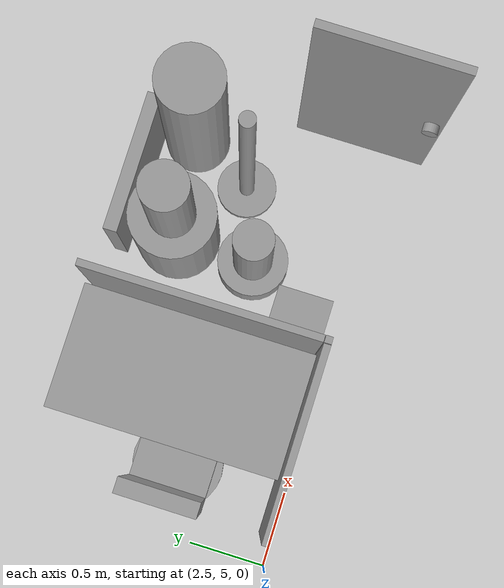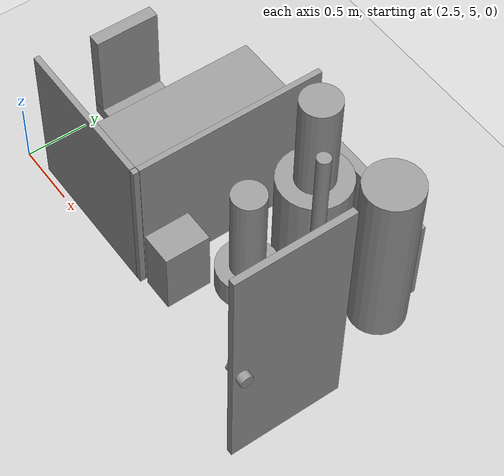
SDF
<sdf version="1.6">
 <world name="default">
  <model name="ground_plane">
   <static>1</static>
   <link name="link">
    <collision name="collision">
     <geometry><plane><normal>0 0 1</normal><size>100 100</size></plane></geometry>
     <surface><friction><ode><mu>100</mu><mu2>50</mu2></ode></friction></surface>
    </collision>
    <visual name="visual">
     <cast_shadows>0</cast_shadows>
     <geometry><plane><normal>0 0 1</normal><size>100 100</size></plane></geometry>
     <material>
      <script><uri>file://media/materials/scripts/gazebo.material</uri><name>Gazebo/Grey</name></script>
     </material>
    </visual>
   </link>
  </model>
  <model name="L8401_desk_clone_2">
   <link name="link_0">
    <pose>0.358907 -0.716347 -0.07 0 -0 3.14159</pose>
    <inertial>
     <mass>0.00540124</mass>
     <inertia>
      <ixx>0.00024509</ixx>
      <ixy>0</ixy>
      <ixz>0</ixz>
      <iyy>0.00024438</iyy>
      <iyz>0</iyz>
      <izz>6.68e-06</izz>
     </inertia>
    </inertial>
    <visual name="visual">
     <geometry><box><size>0.05 0.05 0.7</size></box></geometry>
     <material>
      <lighting>1</lighting>
      <script><uri>file://media/materials/scripts/gazebo.material</uri><name>Gazebo/Grey</name></script>
      <ambient>0.3 0.3 0.3 1</ambient>
      <diffuse>0.7 0.7 0.7 1</diffuse>
      <specular>0.01 0.01 0.01 1</specular>
      <emissive>0 0 0 1</emissive>
      <shader type="vertex"><normal_map>__default__</normal_map></shader>
     </material>
    </visual>
    <collision name="collision">
     <geometry><box><size>0.05 0.05 0.7</size></box></geometry>
     <surface>
      <friction>
       <ode><mu>1</mu><mu2>1</mu2><fdir1>0 0 0</fdir1><slip1>0</slip1><slip2>0</slip2></ode>
       <torsional>
        <coefficient>1</coefficient>
        <patch_radius>0</patch_radius>
        <surface_radius>0</surface_radius>
        <use_patch_radius>1</use_patch_radius>
        <ode><slip>0</slip></ode>
       </torsional>
      </friction>
      <bounce><restitution_coefficient>0</restitution_coefficient><threshold>1e+06</threshold></bounce>
      <contact>
       <collide_without_contact>0</collide_without_contact>
       <collide_without_contact_bitmask>1</collide_without_contact_bitmask>
       <collide_bitmask>1</collide_bitmask>
       <ode>
        <soft_cfm>0</soft_cfm>
        <soft_erp>0.2</soft_erp>
        <kp>1e+13</kp>
        <kd>1</kd>
        <max_vel>0.01</max_vel>
        <min_depth>0</min_depth>
       </ode>
       <bullet>
        <split_impulse>1</split_impulse>
        <split_impulse_penetration_threshold>-0.01</split_impulse_penetration_threshold>
        <soft_cfm>0</soft_cfm>
        <soft_erp>0.2</soft_erp>
        <kp>1e+13</kp>
        <kd>1</kd>
       </bullet>
      </contact>
     </surface>
    </collision>
   </link>
   <link name="link_0_clone">
    <pose>-0.368381 -0.716242 -0.07 0 -0 3.14159</pose>
    <inertial>
     <mass>0.00540124</mass>
     <inertia>
      <ixx>0.00024509</ixx>
      <ixy>0</ixy>
      <ixz>0</ixz>
      <iyy>0.00024438</iyy>
      <iyz>0</iyz>
      <izz>6.68e-06</izz>
     </inertia>
    </inertial>
    <visual name="visual">
     <geometry><box><size>0.05 0.05 0.7</size></box></geometry>
     <material>
      <lighting>1</lighting>
      <script><uri>file://media/materials/scripts/gazebo.material</uri><name>Gazebo/Grey</name></script>
      <ambient>0.3 0.3 0.3 1</ambient>
      <diffuse>0.7 0.7 0.7 1</diffuse>
      <specular>0.01 0.01 0.01 1</specular>
      <emissive>0 0 0 1</emissive>
      <shader type="vertex"><normal_map>__default__</normal_map></shader>
     </material>
    </visual>
    <collision name="collision">
     <geometry><box><size>0.05 0.05 0.7</size></box></geometry>
     <surface>
      <friction>
       <ode><mu>1</mu><mu2>1</mu2><fdir1>0 0 0</fdir1><slip1>0</slip1><slip2>0</slip2></ode>
       <torsional>
        <coefficient>1</coefficient>
        <patch_radius>0</patch_radius>
        <surface_radius>0</surface_radius>
        <use_patch_radius>1</use_patch_radius>
        <ode><slip>0</slip></ode>
       </torsional>
      </friction>
      <bounce><restitution_coefficient>0</restitution_coefficient><threshold>1e+06</threshold></bounce>
      <contact>
       <collide_without_contact>0</collide_without_contact>
       <collide_without_contact_bitmask>1</collide_without_contact_bitmask>
       <collide_bitmask>1</collide_bitmask>
       <ode>
        <soft_cfm>0</soft_cfm>
        <soft_erp>0.2</soft_erp>
        <kp>1e+13</kp>
        <kd>1</kd>
        <max_vel>0.01</max_vel>
        <min_depth>0</min_depth>
       </ode>
       <bullet>
        <split_impulse>1</split_impulse>
        <split_impulse_penetration_threshold>-0.01</split_impulse_penetration_threshold>
        <soft_cfm>0</soft_cfm>
        <soft_erp>0.2</soft_erp>
        <kp>1e+13</kp>
        <kd>1</kd>
       </bullet>
      </contact>
     </surface>
    </collision>
   </link>
   <link name="link_0_clone_0">
    <pose>-0.368174 0.719141 -0.07 0 -0 3.14159</pose>
    <inertial>
     <mass>0.00540124</mass>
     <inertia>
      <ixx>0.00024509</ixx>
      <ixy>0</ixy>
      <ixz>0</ixz>
      <iyy>0.00024438</iyy>
      <iyz>0</iyz>
      <izz>6.68e-06</izz>
     </inertia>
    </inertial>
    <visual name="visual">
     <geometry><box><size>0.05 0.05 0.7</size></box></geometry>
     <material>
      <lighting>1</lighting>
      <script><uri>file://media/materials/scripts/gazebo.material</uri><name>Gazebo/Grey</name></script>
      <ambient>0.3 0.3 0.3 1</ambient>
      <diffuse>0.7 0.7 0.7 1</diffuse>
      <specular>0.01 0.01 0.01 1</specular>
      <emissive>0 0 0 1</emissive>
      <shader type="vertex"><normal_map>__default__</normal_map></shader>
     </material>
    </visual>
    <collision name="collision">
     <geometry><box><size>0.05 0.05 0.7</size></box></geometry>
     <surface>
      <friction>
       <ode><mu>1</mu><mu2>1</mu2><fdir1>0 0 0</fdir1><slip1>0</slip1><slip2>0</slip2></ode>
       <torsional>
        <coefficient>1</coefficient>
        <patch_radius>0</patch_radius>
        <surface_radius>0</surface_radius>
        <use_patch_radius>1</use_patch_radius>
        <ode><slip>0</slip></ode>
       </torsional>
      </friction>
      <bounce><restitution_coefficient>0</restitution_coefficient><threshold>1e+06</threshold></bounce>
      <contact>
       <collide_without_contact>0</collide_without_contact>
       <collide_without_contact_bitmask>1</collide_without_contact_bitmask>
       <collide_bitmask>1</collide_bitmask>
       <ode>
        <soft_cfm>0</soft_cfm>
        <soft_erp>0.2</soft_erp>
        <kp>1e+13</kp>
        <kd>1</kd>
        <max_vel>0.01</max_vel>
        <min_depth>0</min_depth>
       </ode>
       <bullet>
        <split_impulse>1</split_impulse>
        <split_impulse_penetration_threshold>-0.01</split_impulse_penetration_threshold>
        <soft_cfm>0</soft_cfm>
        <soft_erp>0.2</soft_erp>
        <kp>1e+13</kp>
        <kd>1</kd>
       </bullet>
      </contact>
     </surface>
    </collision>
   </link>
   <link name="link_0_clone_1">
    <pose>0.359113 0.719037 -0.07 0 -0 3.14159</pose>
    <inertial>
     <mass>0.00540124</mass>
     <inertia>
      <ixx>0.00024509</ixx>
      <ixy>0</ixy>
      <ixz>0</ixz>
      <iyy>0.00024438</iyy>
      <iyz>0</iyz>
      <izz>6.68e-06</izz>
     </inertia>
    </inertial>
    <visual name="visual">
     <geometry><box><size>0.05 0.05 0.7</size></box></geometry>
     <material>
      <lighting>1</lighting>
      <script><uri>file://media/materials/scripts/gazebo.material</uri><name>Gazebo/Grey</name></script>
      <ambient>0.3 0.3 0.3 1</ambient>
      <diffuse>0.7 0.7 0.7 1</diffuse>
      <specular>0.01 0.01 0.01 1</specular>
      <emissive>0 0 0 1</emissive>
      <shader type="vertex"><normal_map>__default__</normal_map></shader>
     </material>
    </visual>
    <collision name="collision">
     <geometry><box><size>0.05 0.05 0.7</size></box></geometry>
     <surface>
      <friction>
       <ode><mu>1</mu><mu2>1</mu2><fdir1>0 0 0</fdir1><slip1>0</slip1><slip2>0</slip2></ode>
       <torsional>
        <coefficient>1</coefficient>
        <patch_radius>0</patch_radius>
        <surface_radius>0</surface_radius>
        <use_patch_radius>1</use_patch_radius>
        <ode><slip>0</slip></ode>
       </torsional>
      </friction>
      <bounce><restitution_coefficient>0</restitution_coefficient><threshold>1e+06</threshold></bounce>
      <contact>
       <collide_without_contact>0</collide_without_contact>
       <collide_without_contact_bitmask>1</collide_without_contact_bitmask>
       <collide_bitmask>1</collide_bitmask>
       <ode>
        <soft_cfm>0</soft_cfm>
        <soft_erp>0.2</soft_erp>
        <kp>1e+13</kp>
        <kd>1</kd>
        <max_vel>0.01</max_vel>
        <min_depth>0</min_depth>
       </ode>
       <bullet>
        <split_impulse>1</split_impulse>
        <split_impulse_penetration_threshold>-0.01</split_impulse_penetration_threshold>
        <soft_cfm>0</soft_cfm>
        <soft_erp>0.2</soft_erp>
        <kp>1e+13</kp>
        <kd>1</kd>
       </bullet>
      </contact>
     </surface>
    </collision>
   </link>
   <link name="link_1">
    <pose>-6e-05 0.001672 0.28 0 -0 0</pose>
    <inertial>
     <mass>0.0467165</mass>
     <inertia>
      <ixx>0.00864379</ixx>
      <ixy>0</ixy>
      <ixz>0</ixz>
      <iyy>0.00285842</iyy>
      <iyz>0</iyz>
      <izz>0.0114918</izz>
     </inertia>
    </inertial>
    <visual name="visual">
     <geometry><box><size>0.8 1.5 0.06</size></box></geometry>
     <material>
      <lighting>1</lighting>
      <script><uri>file://media/materials/scripts/gazebo.material</uri><name>Gazebo/Grey</name></script>
      <ambient>0.3 0.3 0.3 1</ambient>
      <diffuse>0.7 0.7 0.7 1</diffuse>
      <specular>0.01 0.01 0.01 1</specular>
      <emissive>0 0 0 1</emissive>
      <shader type="vertex"><normal_map>__default__</normal_map></shader>
     </material>
    </visual>
    <collision name="collision">
     <geometry><box><size>0.8 1.5 0.06</size></box></geometry>
     <surface>
      <friction>
       <ode><mu>1</mu><mu2>1</mu2><fdir1>0 0 0</fdir1><slip1>0</slip1><slip2>0</slip2></ode>
       <torsional>
        <coefficient>1</coefficient>
        <patch_radius>0</patch_radius>
        <surface_radius>0</surface_radius>
        <use_patch_radius>1</use_patch_radius>
        <ode><slip>0</slip></ode>
       </torsional>
      </friction>
      <bounce><restitution_coefficient>0</restitution_coefficient><threshold>1e+06</threshold></bounce>
      <contact>
       <collide_without_contact>0</collide_without_contact>
       <collide_without_contact_bitmask>1</collide_without_contact_bitmask>
       <collide_bitmask>1</collide_bitmask>
       <ode>
        <soft_cfm>0</soft_cfm>
        <soft_erp>0.2</soft_erp>
        <kp>1e+13</kp>
        <kd>1</kd>
        <max_vel>0.01</max_vel>
        <min_depth>0</min_depth>
       </ode>
       <bullet>
        <split_impulse>1</split_impulse>
        <split_impulse_penetration_threshold>-0.01</split_impulse_penetration_threshold>
        <soft_cfm>0</soft_cfm>
        <soft_erp>0.2</soft_erp>
        <kp>1e+13</kp>
        <kd>1</kd>
       </bullet>
      </contact>
     </surface>
    </collision>
   </link>
   <joint name="link_1_JOINT_0" type="fixed">
    <parent>link_1</parent>
    <child>link_0</child>
    <pose>0 0 0 -0.01 -0.02 -0.01</pose>
    <physics>
     <ode><limit><cfm>0</cfm><erp>0.2</erp></limit><suspension><cfm>0</cfm><erp>0.2</erp></suspension></ode>
    </physics>
   </joint>
   <joint name="link_1_JOINT_1" type="fixed">
    <parent>link_1</parent>
    <child>link_0_clone</child>
    <physics>
     <ode><limit><cfm>0</cfm><erp>0.2</erp></limit><suspension><cfm>0</cfm><erp>0.2</erp></suspension></ode>
    </physics>
   </joint>
   <joint name="link_1_JOINT_2" type="fixed">
    <parent>link_1</parent>
    <child>link_0_clone_1</child>
    <physics>
     <ode><limit><cfm>0</cfm><erp>0.2</erp></limit><suspension><cfm>0</cfm><erp>0.2</erp></suspension></ode>
    </physics>
   </joint>
   <joint name="link_1_JOINT_3" type="fixed">
    <parent>link_1</parent>
    <child>link_0_clone_0</child>
    <physics>
     <ode><limit><cfm>0</cfm><erp>0.2</erp></limit><suspension><cfm>0</cfm><erp>0.2</erp></suspension></ode>
    </physics>
   </joint>
   <static>1</static>
   <pose>3.47357 5.83966 0.420003 3e-06 2e-06 -0.00208</pose>
  </model>
  <model name="L8401_panel_B_0_clone_0">
   <link name="link_0">
    <pose>0 0 0 0 -0 1.57</pose>
    <inertial>
     <mass>1</mass>
     <inertia>
      <ixx>0.166667</ixx>
      <ixy>0</ixy>
      <ixz>0</ixz>
      <iyy>0.166667</iyy>
      <iyz>0</iyz>
      <izz>0.166667</izz>
     </inertia>
    </inertial>
    <visual name="visual">
     <geometry><box><size>1.5 0.045 1.23</size></box></geometry>
     <material>
      <lighting>1</lighting>
      <script><uri>file://media/materials/scripts/gazebo.material</uri><name>Gazebo/Grey</name></script>
      <ambient>0.3 0.3 0.3 1</ambient>
      <diffuse>0.7 0.7 0.7 1</diffuse>
      <specular>0.01 0.01 0.01 1</specular>
      <emissive>0 0 0 1</emissive>
      <shader type="vertex"><normal_map>__default__</normal_map></shader>
     </material>
    </visual>
    <collision name="collision">
     <geometry><box><size>1.5 0.045 1.23</size></box></geometry>
     <surface>
      <friction>
       <ode><mu>1</mu><mu2>1</mu2><fdir1>0 0 0</fdir1><slip1>0</slip1><slip2>0</slip2></ode>
       <torsional>
        <coefficient>1</coefficient>
        <patch_radius>0</patch_radius>
        <surface_radius>0</surface_radius>
        <use_patch_radius>1</use_patch_radius>
        <ode><slip>0</slip></ode>
       </torsional>
      </friction>
      <bounce><restitution_coefficient>0</restitution_coefficient><threshold>1e+06</threshold></bounce>
      <contact>
       <collide_without_contact>0</collide_without_contact>
       <collide_without_contact_bitmask>1</collide_without_contact_bitmask>
       <collide_bitmask>1</collide_bitmask>
       <ode>
        <soft_cfm>0</soft_cfm>
        <soft_erp>0.2</soft_erp>
        <kp>1e+13</kp>
        <kd>1</kd>
        <max_vel>0.01</max_vel>
        <min_depth>0</min_depth>
       </ode>
       <bullet>
        <split_impulse>1</split_impulse>
        <split_impulse_penetration_threshold>-0.01</split_impulse_penetration_threshold>
        <soft_cfm>0</soft_cfm>
        <soft_erp>0.2</soft_erp>
        <kp>1e+13</kp>
        <kd>1</kd>
       </bullet>
      </contact>
     </surface>
    </collision>
   </link>
   <static>1</static>
   <pose>3.92948 5.84221 0.615 0 7e-06 0.00107</pose>
  </model>
  <model name="L8401_panel_A_0_clone_3">
   <link name="link_0">
    <inertial>
     <mass>1</mass>
     <inertia>
      <ixx>0.166667</ixx>
      <ixy>0</ixy>
      <ixz>0</ixz>
      <iyy>0.166667</iyy>
      <iyz>0</iyz>
      <izz>0.166667</izz>
     </inertia>
    </inertial>
    <visual name="visual">
     <geometry><box><size>1.2 0.045 1.23</size></box></geometry>
     <material>
      <lighting>1</lighting>
      <script><uri>file://media/materials/scripts/gazebo.material</uri><name>Gazebo/Grey</name></script>
      <ambient>0.3 0.3 0.3 1</ambient>
      <diffuse>0.7 0.7 0.7 1</diffuse>
      <specular>0.01 0.01 0.01 1</specular>
      <emissive>0 0 0 1</emissive>
      <shader type="vertex"><normal_map>__default__</normal_map></shader>
     </material>
    </visual>
    <collision name="collision">
     <geometry><box><size>1.2 0.045 1.23</size></box></geometry>
     <surface>
      <friction>
       <ode><mu>1</mu><mu2>1</mu2><fdir1>0 0 0</fdir1><slip1>0</slip1><slip2>0</slip2></ode>
       <torsional>
        <coefficient>1</coefficient>
        <patch_radius>0</patch_radius>
        <surface_radius>0</surface_radius>
        <use_patch_radius>1</use_patch_radius>
        <ode><slip>0</slip></ode>
       </torsional>
      </friction>
      <bounce><restitution_coefficient>0</restitution_coefficient><threshold>1e+06</threshold></bounce>
      <contact>
       <collide_without_contact>0</collide_without_contact>
       <collide_without_contact_bitmask>1</collide_without_contact_bitmask>
       <collide_bitmask>1</collide_bitmask>
       <ode>
        <soft_cfm>0</soft_cfm>
        <soft_erp>0.2</soft_erp>
        <kp>1e+13</kp>
        <kd>1</kd>
        <max_vel>0.01</max_vel>
        <min_depth>0</min_depth>
       </ode>
       <bullet>
        <split_impulse>1</split_impulse>
        <split_impulse_penetration_threshold>-0.01</split_impulse_penetration_threshold>
        <soft_cfm>0</soft_cfm>
        <soft_erp>0.2</soft_erp>
        <kp>1e+13</kp>
        <kd>1</kd>
       </bullet>
      </contact>
     </surface>
    </collision>
   </link>
   <static>1</static>
   <pose>3.30448 5.06713 0.614998 -2e-06 3e-06 -0.001554</pose>
  </model>
  <model name="L8401_panel_C_0_clone_0">
   <link name="link_0">
    <inertial>
     <mass>1</mass>
     <inertia>
      <ixx>0.166667</ixx>
      <ixy>0</ixy>
      <ixz>0</ixz>
      <iyy>0.166667</iyy>
      <iyz>0</iyz>
      <izz>0.166667</izz>
     </inertia>
    </inertial>
    <visual name="visual">
     <geometry><box><size>0.045 0.045 1.23</size></box></geometry>
     <material>
      <lighting>1</lighting>
      <script><uri>file://media/materials/scripts/gazebo.material</uri><name>Gazebo/Grey</name></script>
      <ambient>0.3 0.3 0.3 1</ambient>
      <diffuse>0.7 0.7 0.7 1</diffuse>
      <specular>0.01 0.01 0.01 1</specular>
      <emissive>0 0 0 1</emissive>
      <shader type="vertex"><normal_map>__default__</normal_map></shader>
     </material>
    </visual>
    <collision name="collision">
     <geometry><box><size>0.045 0.045 1.23</size></box></geometry>
     <surface>
      <friction>
       <ode><mu>1</mu><mu2>1</mu2><fdir1>0 0 0</fdir1><slip1>0</slip1><slip2>0</slip2></ode>
       <torsional>
        <coefficient>1</coefficient>
        <patch_radius>0</patch_radius>
        <surface_radius>0</surface_radius>
        <use_patch_radius>1</use_patch_radius>
        <ode><slip>0</slip></ode>
       </torsional>
      </friction>
      <bounce><restitution_coefficient>0</restitution_coefficient><threshold>1e+06</threshold></bounce>
      <contact>
       <collide_without_contact>0</collide_without_contact>
       <collide_without_contact_bitmask>1</collide_without_contact_bitmask>
       <collide_bitmask>1</collide_bitmask>
       <ode>
        <soft_cfm>0</soft_cfm>
        <soft_erp>0.2</soft_erp>
        <kp>1e+13</kp>
        <kd>1</kd>
        <max_vel>0.01</max_vel>
        <min_depth>0</min_depth>
       </ode>
       <bullet>
        <split_impulse>1</split_impulse>
        <split_impulse_penetration_threshold>-0.01</split_impulse_penetration_threshold>
        <soft_cfm>0</soft_cfm>
        <soft_erp>0.2</soft_erp>
        <kp>1e+13</kp>
        <kd>1</kd>
       </bullet>
      </contact>
     </surface>
    </collision>
   </link>
   <static>1</static>
   <pose>3.93092 5.06665 0.615 1e-06 -1e-06 8.6e-05</pose>
  </model>
  <model name="L8401_shredder">
   <link name="link">
    <inertial>
     <mass>1</mass>
     <inertia>
      <ixx>0.166667</ixx>
      <ixy>0</ixy>
      <ixz>0</ixz>
      <iyy>0.166667</iyy>
      <iyz>0</iyz>
      <izz>0.166667</izz>
     </inertia>
    </inertial>
    <visual name="visual">
     <geometry><box><size>0.26 0.36 0.55</size></box></geometry>
     <material>
      <script><name>Gazebo/Grey</name><uri>file://media/materials/scripts/gazebo.material</uri></script>
      <ambient>0.3 0.3 0.3 1</ambient>
      <diffuse>0.7 0.7 0.7 1</diffuse>
      <specular>0.01 0.01 0.01 1</specular>
      <emissive>0 0 0 1</emissive>
      <shader type="vertex"><normal_map>__default__</normal_map></shader>
     </material>
    </visual>
    <collision name="collision">
     <geometry><box><size>0.26 0.36 0.55</size></box></geometry>
     <surface>
      <friction>
       <ode><mu>1</mu><mu2>1</mu2><fdir1>0 0 0</fdir1><slip1>0</slip1><slip2>0</slip2></ode>
       <torsional>
        <coefficient>1</coefficient>
        <patch_radius>0</patch_radius>
        <surface_radius>0</surface_radius>
        <use_patch_radius>1</use_patch_radius>
        <ode><slip>0</slip></ode>
       </torsional>
      </friction>
      <bounce><restitution_coefficient>0</restitution_coefficient><threshold>1e+06</threshold></bounce>
      <contact>
       <collide_without_contact>0</collide_without_contact>
       <collide_without_contact_bitmask>1</collide_without_contact_bitmask>
       <collide_bitmask>1</collide_bitmask>
       <ode>
        <soft_cfm>0</soft_cfm>
        <soft_erp>0.2</soft_erp>
        <kp>1e+13</kp>
        <kd>1</kd>
        <max_vel>0.01</max_vel>
        <min_depth>0</min_depth>
       </ode>
       <bullet>
        <split_impulse>1</split_impulse>
        <split_impulse_penetration_threshold>-0.01</split_impulse_penetration_threshold>
        <soft_cfm>0</soft_cfm>
        <soft_erp>0.2</soft_erp>
        <kp>1e+13</kp>
        <kd>1</kd>
       </bullet>
      </contact>
     </surface>
    </collision>
   </link>
   <static>1</static>
   <pose>4.11655 5.26224 0.275 0 -0 0</pose>
  </model>
  <model name="L8401_clothes_rack">
   <link name="link">
    <inertial>
     <mass>1</mass>
     <inertia><ixx>0.145833</ixx><ixy>0</ixy><ixz>0</ixz><iyy>0.145833</iyy><iyz>0</iyz><izz>0.125</izz></inertia>
    </inertial>
    <visual name="visual">
     <geometry><cylinder><radius>0.2</radius><length>0.04</length></cylinder></geometry>
     <material>
      <script><name>Gazebo/Grey</name><uri>file://media/materials/scripts/gazebo.material</uri></script>
      <ambient>0.3 0.3 0.3 1</ambient>
      <diffuse>0.7 0.7 0.7 1</diffuse>
      <specular>0.01 0.01 0.01 1</specular>
      <emissive>0 0 0 1</emissive>
      <shader type="vertex"><normal_map>__default__</normal_map></shader>
     </material>
    </visual>
    <collision name="collision">
     <geometry><cylinder><radius>0.2</radius><length>0.04</length></cylinder></geometry>
     <surface>
      <friction>
       <ode><mu>1</mu><mu2>1</mu2><fdir1>0 0 0</fdir1><slip1>0</slip1><slip2>0</slip2></ode>
       <torsional>
        <coefficient>1</coefficient>
        <patch_radius>0</patch_radius>
        <surface_radius>0</surface_radius>
        <use_patch_radius>1</use_patch_radius>
        <ode><slip>0</slip></ode>
       </torsional>
      </friction>
      <bounce><restitution_coefficient>0</restitution_coefficient><threshold>1e+06</threshold></bounce>
      <contact>
       <collide_without_contact>0</collide_without_contact>
       <collide_without_contact_bitmask>1</collide_without_contact_bitmask>
       <collide_bitmask>1</collide_bitmask>
       <ode>
        <soft_cfm>0</soft_cfm>
        <soft_erp>0.2</soft_erp>
        <kp>1e+13</kp>
        <kd>1</kd>
        <max_vel>0.01</max_vel>
        <min_depth>0</min_depth>
       </ode>
       <bullet>
        <split_impulse>1</split_impulse>
        <split_impulse_penetration_threshold>-0.01</split_impulse_penetration_threshold>
        <soft_cfm>0</soft_cfm>
        <soft_erp>0.2</soft_erp>
        <kp>1e+13</kp>
        <kd>1</kd>
       </bullet>
      </contact>
     </surface>
    </collision>
   </link>
   <link name="link_0">
    <pose>0 0 0.877 0 -0 0</pose>
    <inertial>
     <mass>1</mass>
     <inertia><ixx>0.145833</ixx><ixy>0</ixy><ixz>0</ixz><iyy>0.145833</iyy><iyz>0</iyz><izz>0.125</izz></inertia>
    </inertial>
    <visual name="visual">
     <geometry><cylinder><radius>0.05</radius><length>1.75</length></cylinder></geometry>
     <material>
      <lighting>1</lighting>
      <script><uri>file://media/materials/scripts/gazebo.material</uri><name>Gazebo/Grey</name></script>
      <ambient>0.3 0.3 0.3 1</ambient>
      <diffuse>0.7 0.7 0.7 1</diffuse>
      <specular>0.01 0.01 0.01 1</specular>
      <emissive>0 0 0 1</emissive>
      <shader type="vertex"><normal_map>__default__</normal_map></shader>
     </material>
    </visual>
    <collision name="collision">
     <geometry><cylinder><radius>0.05</radius><length>1.75</length></cylinder></geometry>
     <surface>
      <friction>
       <ode><mu>1</mu><mu2>1</mu2><fdir1>0 0 0</fdir1><slip1>0</slip1><slip2>0</slip2></ode>
       <torsional>
        <coefficient>1</coefficient>
        <patch_radius>0</patch_radius>
        <surface_radius>0</surface_radius>
        <use_patch_radius>1</use_patch_radius>
        <ode><slip>0</slip></ode>
       </torsional>
      </friction>
      <bounce><restitution_coefficient>0</restitution_coefficient><threshold>1e+06</threshold></bounce>
      <contact>
       <collide_without_contact>0</collide_without_contact>
       <collide_without_contact_bitmask>1</collide_without_contact_bitmask>
       <collide_bitmask>1</collide_bitmask>
       <ode>
        <soft_cfm>0</soft_cfm>
        <soft_erp>0.2</soft_erp>
        <kp>1e+13</kp>
        <kd>1</kd>
        <max_vel>0.01</max_vel>
        <min_depth>0</min_depth>
       </ode>
       <bullet>
        <split_impulse>1</split_impulse>
        <split_impulse_penetration_threshold>-0.01</split_impulse_penetration_threshold>
        <soft_cfm>0</soft_cfm>
        <soft_erp>0.2</soft_erp>
        <kp>1e+13</kp>
        <kd>1</kd>
       </bullet>
      </contact>
     </surface>
    </collision>
   </link>
   <joint name="link_JOINT_0" type="fixed">
    <parent>link</parent>
    <child>link_0</child>
    <physics>
     <ode><limit><cfm>0</cfm><erp>0.2</erp></limit><suspension><cfm>0</cfm><erp>0.2</erp></suspension></ode>
    </physics>
   </joint>
   <static>1</static>
   <pose>4.88385 5.85538 0.02 0 0 -1.3e-05</pose>
  </model>
  <model name="L8401_robot_A_0">
   <link name="link">
    <inertial>
     <mass>1</mass>
     <inertia><ixx>0.145833</ixx><ixy>0</ixy><ixz>0</ixz><iyy>0.145833</iyy><iyz>0</iyz><izz>0.125</izz></inertia>
    </inertial>
    <visual name="visual">
     <geometry><cylinder><radius>0.235</radius><length>0.22</length></cylinder></geometry>
     <material>
      <script><name>Gazebo/Grey</name><uri>file://media/materials/scripts/gazebo.material</uri></script>
      <ambient>0.3 0.3 0.3 1</ambient>
      <diffuse>0.7 0.7 0.7 1</diffuse>
      <specular>0.01 0.01 0.01 1</specular>
      <emissive>0 0 0 1</emissive>
      <shader type="vertex"><normal_map>__default__</normal_map></shader>
     </material>
    </visual>
    <collision name="collision">
     <geometry><cylinder><radius>0.235</radius><length>0.22</length></cylinder></geometry>
     <surface>
      <friction>
       <ode><mu>1</mu><mu2>1</mu2><fdir1>0 0 0</fdir1><slip1>0</slip1><slip2>0</slip2></ode>
       <torsional>
        <coefficient>1</coefficient>
        <patch_radius>0</patch_radius>
        <surface_radius>0</surface_radius>
        <use_patch_radius>1</use_patch_radius>
        <ode><slip>0</slip></ode>
       </torsional>
      </friction>
      <bounce><restitution_coefficient>0</restitution_coefficient><threshold>1e+06</threshold></bounce>
      <contact>
       <collide_without_contact>0</collide_without_contact>
       <collide_without_contact_bitmask>1</collide_without_contact_bitmask>
       <collide_bitmask>1</collide_bitmask>
       <ode>
        <soft_cfm>0</soft_cfm>
        <soft_erp>0.2</soft_erp>
        <kp>1e+13</kp>
        <kd>1</kd>
        <max_vel>0.01</max_vel>
        <min_depth>0</min_depth>
       </ode>
       <bullet>
        <split_impulse>1</split_impulse>
        <split_impulse_penetration_threshold>-0.01</split_impulse_penetration_threshold>
        <soft_cfm>0</soft_cfm>
        <soft_erp>0.2</soft_erp>
        <kp>1e+13</kp>
        <kd>1</kd>
       </bullet>
      </contact>
     </surface>
    </collision>
   </link>
   <link name="link_0">
    <pose>0 0 0.51 0 -0 0</pose>
    <inertial>
     <mass>1</mass>
     <inertia><ixx>0.145833</ixx><ixy>0</ixy><ixz>0</ixz><iyy>0.145833</iyy><iyz>0</iyz><izz>0.125</izz></inertia>
    </inertial>
    <visual name="visual">
     <geometry><cylinder><radius>0.13</radius><length>0.8</length></cylinder></geometry>
     <material>
      <lighting>1</lighting>
      <script><uri>file://media/materials/scripts/gazebo.material</uri><name>Gazebo/Grey</name></script>
      <ambient>0.3 0.3 0.3 1</ambient>
      <diffuse>0.7 0.7 0.7 1</diffuse>
      <specular>0.01 0.01 0.01 1</specular>
      <emissive>0 0 0 1</emissive>
      <shader type="vertex"><normal_map>__default__</normal_map></shader>
     </material>
    </visual>
    <collision name="collision">
     <geometry><cylinder><radius>0.13</radius><length>0.8</length></cylinder></geometry>
     <surface>
      <friction>
       <ode><mu>1</mu><mu2>1</mu2><fdir1>0 0 0</fdir1><slip1>0</slip1><slip2>0</slip2></ode>
       <torsional>
        <coefficient>1</coefficient>
        <patch_radius>0</patch_radius>
        <surface_radius>0</surface_radius>
        <use_patch_radius>1</use_patch_radius>
        <ode><slip>0</slip></ode>
       </torsional>
      </friction>
      <bounce><restitution_coefficient>0</restitution_coefficient><threshold>1e+06</threshold></bounce>
      <contact>
       <collide_without_contact>0</collide_without_contact>
       <collide_without_contact_bitmask>1</collide_without_contact_bitmask>
       <collide_bitmask>1</collide_bitmask>
       <ode>
        <soft_cfm>0</soft_cfm>
        <soft_erp>0.2</soft_erp>
        <kp>1e+13</kp>
        <kd>1</kd>
        <max_vel>0.01</max_vel>
        <min_depth>0</min_depth>
       </ode>
       <bullet>
        <split_impulse>1</split_impulse>
        <split_impulse_penetration_threshold>-0.01</split_impulse_penetration_threshold>
        <soft_cfm>0</soft_cfm>
        <soft_erp>0.2</soft_erp>
        <kp>1e+13</kp>
        <kd>1</kd>
       </bullet>
      </contact>
     </surface>
    </collision>
   </link>
   <joint name="link_JOINT_0" type="fixed">
    <parent>link</parent>
    <child>link_0</child>
    <physics>
     <ode><limit><cfm>0</cfm><erp>0.2</erp></limit><suspension><cfm>0</cfm><erp>0.2</erp></suspension></ode>
    </physics>
   </joint>
   <static>1</static>
   <pose>4.39219 5.66112 0.109994 0 0 -2e-06</pose>
  </model>
  <model name="L8401_robot_B">
   <link name="link">
    <inertial>
     <mass>1</mass>
     <inertia><ixx>0.145833</ixx><ixy>0</ixy><ixz>0</ixz><iyy>0.145833</iyy><iyz>0</iyz><izz>0.125</izz></inertia>
    </inertial>
    <visual name="visual">
     <geometry><cylinder><radius>0.28</radius><length>0.85</length></cylinder></geometry>
     <material>
      <script><name>Gazebo/Grey</name><uri>file://media/materials/scripts/gazebo.material</uri></script>
      <ambient>0.3 0.3 0.3 1</ambient>
      <diffuse>0.7 0.7 0.7 1</diffuse>
      <specular>0.01 0.01 0.01 1</specular>
      <emissive>0 0 0 1</emissive>
      <shader type="vertex"><normal_map>__default__</normal_map></shader>
     </material>
    </visual>
    <collision name="collision">
     <geometry><cylinder><radius>0.28</radius><length>0.85</length></cylinder></geometry>
     <surface>
      <friction>
       <ode><mu>1</mu><mu2>1</mu2><fdir1>0 0 0</fdir1><slip1>0</slip1><slip2>0</slip2></ode>
       <torsional>
        <coefficient>1</coefficient>
        <patch_radius>0</patch_radius>
        <surface_radius>0</surface_radius>
        <use_patch_radius>1</use_patch_radius>
        <ode><slip>0</slip></ode>
       </torsional>
      </friction>
      <bounce><restitution_coefficient>0</restitution_coefficient><threshold>1e+06</threshold></bounce>
      <contact>
       <collide_without_contact>0</collide_without_contact>
       <collide_without_contact_bitmask>1</collide_without_contact_bitmask>
       <collide_bitmask>1</collide_bitmask>
       <ode>
        <soft_cfm>0</soft_cfm>
        <soft_erp>0.2</soft_erp>
        <kp>1e+13</kp>
        <kd>1</kd>
        <max_vel>0.01</max_vel>
        <min_depth>0</min_depth>
       </ode>
       <bullet>
        <split_impulse>1</split_impulse>
        <split_impulse_penetration_threshold>-0.01</split_impulse_penetration_threshold>
        <soft_cfm>0</soft_cfm>
        <soft_erp>0.2</soft_erp>
        <kp>1e+13</kp>
        <kd>1</kd>
       </bullet>
      </contact>
     </surface>
    </collision>
   </link>
   <link name="link_0">
    <pose>0 0 0.825 0 -0 0</pose>
    <inertial>
     <mass>1</mass>
     <inertia><ixx>0.145833</ixx><ixy>0</ixy><ixz>0</ixz><iyy>0.145833</iyy><iyz>0</iyz><izz>0.125</izz></inertia>
    </inertial>
    <visual name="visual">
     <geometry><cylinder><radius>0.15</radius><length>0.8</length></cylinder></geometry>
     <material>
      <lighting>1</lighting>
      <script><uri>file://media/materials/scripts/gazebo.material</uri><name>Gazebo/Grey</name></script>
      <ambient>0.3 0.3 0.3 1</ambient>
      <diffuse>0.7 0.7 0.7 1</diffuse>
      <specular>0.01 0.01 0.01 1</specular>
      <emissive>0 0 0 1</emissive>
      <shader type="vertex"><normal_map>__default__</normal_map></shader>
     </material>
    </visual>
    <collision name="collision">
     <geometry><cylinder><radius>0.15</radius><length>0.8</length></cylinder></geometry>
     <surface>
      <friction>
       <ode><mu>1</mu><mu2>1</mu2><fdir1>0 0 0</fdir1><slip1>0</slip1><slip2>0</slip2></ode>
       <torsional>
        <coefficient>1</coefficient>
        <patch_radius>0</patch_radius>
        <surface_radius>0</surface_radius>
        <use_patch_radius>1</use_patch_radius>
        <ode><slip>0</slip></ode>
       </torsional>
      </friction>
      <bounce><restitution_coefficient>0</restitution_coefficient><threshold>1e+06</threshold></bounce>
      <contact>
       <collide_without_contact>0</collide_without_contact>
       <collide_without_contact_bitmask>1</collide_without_contact_bitmask>
       <collide_bitmask>1</collide_bitmask>
       <ode>
        <soft_cfm>0</soft_cfm>
        <soft_erp>0.2</soft_erp>
        <kp>1e+13</kp>
        <kd>1</kd>
        <max_vel>0.01</max_vel>
        <min_depth>0</min_depth>
       </ode>
       <bullet>
        <split_impulse>1</split_impulse>
        <split_impulse_penetration_threshold>-0.01</split_impulse_penetration_threshold>
        <soft_cfm>0</soft_cfm>
        <soft_erp>0.2</soft_erp>
        <kp>1e+13</kp>
        <kd>1</kd>
       </bullet>
      </contact>
     </surface>
    </collision>
   </link>
   <joint name="link_JOINT_0" type="fixed">
    <parent>link</parent>
    <child>link_0</child>
    <physics>
     <ode><limit><cfm>0</cfm><erp>0.2</erp></limit><suspension><cfm>0</cfm><erp>0.2</erp></suspension></ode>
    </physics>
   </joint>
   <static>1</static>
   <pose>4.42488 6.19373 0.425 0 0 -5.5e-05</pose>
  </model>
  <model name="L8401_folded_desk">
   <link name="link">
    <inertial>
     <mass>1</mass>
     <inertia>
      <ixx>0.166667</ixx>
      <ixy>0</ixy>
      <ixz>0</ixz>
      <iyy>0.166667</iyy>
      <iyz>0</iyz>
      <izz>0.166667</izz>
     </inertia>
    </inertial>
    <visual name="visual">
     <geometry><box><size>0.91 0.09 0.76</size></box></geometry>
     <material>
      <script><name>Gazebo/Grey</name><uri>file://media/materials/scripts/gazebo.material</uri></script>
      <ambient>0.3 0.3 0.3 1</ambient>
      <diffuse>0.7 0.7 0.7 1</diffuse>
      <specular>0.01 0.01 0.01 1</specular>
      <emissive>0 0 0 1</emissive>
      <shader type="vertex"><normal_map>__default__</normal_map></shader>
     </material>
    </visual>
    <collision name="collision">
     <geometry><box><size>0.91 0.09 0.76</size></box></geometry>
     <surface>
      <friction>
       <ode><mu>1</mu><mu2>1</mu2><fdir1>0 0 0</fdir1><slip1>0</slip1><slip2>0</slip2></ode>
       <torsional>
        <coefficient>1</coefficient>
        <patch_radius>0</patch_radius>
        <surface_radius>0</surface_radius>
        <use_patch_radius>1</use_patch_radius>
        <ode><slip>0</slip></ode>
       </torsional>
      </friction>
      <bounce><restitution_coefficient>0</restitution_coefficient><threshold>1e+06</threshold></bounce>
      <contact>
       <collide_without_contact>0</collide_without_contact>
       <collide_without_contact_bitmask>1</collide_without_contact_bitmask>
       <collide_bitmask>1</collide_bitmask>
       <ode>
        <soft_cfm>0</soft_cfm>
        <soft_erp>0.2</soft_erp>
        <kp>1e+13</kp>
        <kd>1</kd>
        <max_vel>0.01</max_vel>
        <min_depth>0</min_depth>
       </ode>
       <bullet>
        <split_impulse>1</split_impulse>
        <split_impulse_penetration_threshold>-0.01</split_impulse_penetration_threshold>
        <soft_cfm>0</soft_cfm>
        <soft_erp>0.2</soft_erp>
        <kp>1e+13</kp>
        <kd>1</kd>
       </bullet>
      </contact>
     </surface>
    </collision>
   </link>
   <static>1</static>
   <pose>4.68329 6.54166 0.38 -1e-06 0 0</pose>
  </model>
  <model name="L8401_robot_C">
   <link name="link">
    <inertial>
     <mass>1</mass>
     <inertia><ixx>0.145833</ixx><ixy>0</ixy><ixz>0</ixz><iyy>0.145833</iyy><iyz>0</iyz><izz>0.125</izz></inertia>
    </inertial>
    <visual name="visual">
     <geometry><cylinder><radius>0.215</radius><length>1.43</length></cylinder></geometry>
     <material>
      <script><name>Gazebo/Grey</name><uri>file://media/materials/scripts/gazebo.material</uri></script>
      <ambient>0.3 0.3 0.3 1</ambient>
      <diffuse>0.7 0.7 0.7 1</diffuse>
      <specular>0.01 0.01 0.01 1</specular>
      <emissive>0 0 0 1</emissive>
      <shader type="vertex"><normal_map>__default__</normal_map></shader>
     </material>
    </visual>
    <collision name="collision">
     <geometry><cylinder><radius>0.215</radius><length>1.43</length></cylinder></geometry>
     <surface>
      <friction>
       <ode><mu>1</mu><mu2>1</mu2><fdir1>0 0 0</fdir1><slip1>0</slip1><slip2>0</slip2></ode>
       <torsional>
        <coefficient>1</coefficient>
        <patch_radius>0</patch_radius>
        <surface_radius>0</surface_radius>
        <use_patch_radius>1</use_patch_radius>
        <ode><slip>0</slip></ode>
       </torsional>
      </friction>
      <bounce><restitution_coefficient>0</restitution_coefficient><threshold>1e+06</threshold></bounce>
      <contact>
       <collide_without_contact>0</collide_without_contact>
       <collide_without_contact_bitmask>1</collide_without_contact_bitmask>
       <collide_bitmask>1</collide_bitmask>
       <ode>
        <soft_cfm>0</soft_cfm>
        <soft_erp>0.2</soft_erp>
        <kp>1e+13</kp>
        <kd>1</kd>
        <max_vel>0.01</max_vel>
        <min_depth>0</min_depth>
       </ode>
       <bullet>
        <split_impulse>1</split_impulse>
        <split_impulse_penetration_threshold>-0.01</split_impulse_penetration_threshold>
        <soft_cfm>0</soft_cfm>
        <soft_erp>0.2</soft_erp>
        <kp>1e+13</kp>
        <kd>1</kd>
       </bullet>
      </contact>
     </surface>
    </collision>
   </link>
   <static>1</static>
   <pose>5.10447 6.26993 0.714994 0 0 -2.3e-05</pose>
  </model>
  <model name="L8401_door_A_2">
   <link name="link">
    <pose>0 0 0.5 0 -0 0</pose>
    <inertial>
     <mass>0.112344</mass>
     <inertia>
      <ixx>0.0416027</ixx>
      <ixy>0</ixy>
      <ixz>0</ixz>
      <iyy>0.0357471</iyy>
      <iyz>0</iyz>
      <izz>0.00595378</izz>
     </inertia>
    </inertial>
    <visual name="visual">
     <geometry><box><size>0.05 0.89 1.99</size></box></geometry>
     <material>
      <script><name>Gazebo/Grey</name><uri>file://media/materials/scripts/gazebo.material</uri></script>
      <ambient>0.3 0.3 0.3 1</ambient>
      <diffuse>0.7 0.7 0.7 1</diffuse>
      <specular>0.01 0.01 0.01 1</specular>
      <emissive>0 0 0 1</emissive>
      <shader type="vertex"><normal_map>__default__</normal_map></shader>
     </material>
    </visual>
    <collision name="collision">
     <geometry><box><size>0.05 0.89 1.99</size></box></geometry>
     <surface>
      <friction>
       <ode><mu>1</mu><mu2>1</mu2><fdir1>0 0 0</fdir1><slip1>0</slip1><slip2>0</slip2></ode>
       <torsional>
        <coefficient>1</coefficient>
        <patch_radius>0</patch_radius>
        <surface_radius>0</surface_radius>
        <use_patch_radius>1</use_patch_radius>
        <ode><slip>0</slip></ode>
       </torsional>
      </friction>
      <bounce><restitution_coefficient>0</restitution_coefficient><threshold>1e+06</threshold></bounce>
      <contact>
       <collide_without_contact>0</collide_without_contact>
       <collide_without_contact_bitmask>1</collide_without_contact_bitmask>
       <collide_bitmask>1</collide_bitmask>
       <ode>
        <soft_cfm>0</soft_cfm>
        <soft_erp>0.2</soft_erp>
        <kp>1e+13</kp>
        <kd>1</kd>
        <max_vel>0.01</max_vel>
        <min_depth>0</min_depth>
       </ode>
       <bullet>
        <split_impulse>1</split_impulse>
        <split_impulse_penetration_threshold>-0.01</split_impulse_penetration_threshold>
        <soft_cfm>0</soft_cfm>
        <soft_erp>0.2</soft_erp>
        <kp>1e+13</kp>
        <kd>1</kd>
       </bullet>
      </contact>
     </surface>
    </collision>
   </link>
   <link name="link_1">
    <pose>-0 0.372455 0.450023 0 1.57 0</pose>
    <inertial>
     <mass>3.32018</mass>
     <inertia><ixx>3.25752</ixx><ixy>0</ixy><ixz>0</ixz><iyy>3.25752</iyy><iyz>0</iyz><izz>0.415022</izz></inertia>
    </inertial>
    <visual name="visual">
     <geometry><cylinder><radius>0.05</radius><length>0.166005</length></cylinder></geometry>
     <material>
      <lighting>1</lighting>
      <script><uri>file://media/materials/scripts/gazebo.material</uri><name>Gazebo/Grey</name></script>
      <ambient>0.3 0.3 0.3 1</ambient>
      <diffuse>0.7 0.7 0.7 1</diffuse>
      <specular>0.01 0.01 0.01 1</specular>
      <emissive>0 0 0 1</emissive>
      <shader type="vertex"><normal_map>__default__</normal_map></shader>
     </material>
    </visual>
    <collision name="collision">
     <geometry><cylinder><radius>0.05</radius><length>0.166005</length></cylinder></geometry>
     <surface>
      <friction>
       <ode><mu>1</mu><mu2>1</mu2><fdir1>0 0 0</fdir1><slip1>0</slip1><slip2>0</slip2></ode>
       <torsional>
        <coefficient>1</coefficient>
        <patch_radius>0</patch_radius>
        <surface_radius>0</surface_radius>
        <use_patch_radius>1</use_patch_radius>
        <ode><slip>0</slip></ode>
       </torsional>
      </friction>
      <bounce><restitution_coefficient>0</restitution_coefficient><threshold>1e+06</threshold></bounce>
      <contact>
       <collide_without_contact>0</collide_without_contact>
       <collide_without_contact_bitmask>1</collide_without_contact_bitmask>
       <collide_bitmask>1</collide_bitmask>
       <ode>
        <soft_cfm>0</soft_cfm>
        <soft_erp>0.2</soft_erp>
        <kp>1e+13</kp>
        <kd>1</kd>
        <max_vel>0.01</max_vel>
        <min_depth>0</min_depth>
       </ode>
       <bullet>
        <split_impulse>1</split_impulse>
        <split_impulse_penetration_threshold>-0.01</split_impulse_penetration_threshold>
        <soft_cfm>0</soft_cfm>
        <soft_erp>0.2</soft_erp>
        <kp>1e+13</kp>
        <kd>1</kd>
       </bullet>
      </contact>
     </surface>
    </collision>
   </link>
   <joint name="link_JOINT_0" type="fixed">
    <parent>link</parent>
    <child>link_1</child>
    <physics>
     <ode><limit><cfm>0</cfm><erp>0.2</erp></limit><suspension><cfm>0</cfm><erp>0.2</erp></suspension></ode>
    </physics>
   </joint>
   <static>1</static>
   <pose>5.42854 5.21247 0.495 -4e-06 -3e-06 3.14158</pose>
  </model>
  <model name="L8401_chair_clone_1">
   <link name="link">
    <pose>0 -0 0.25 0 -0 0</pose>
    <inertial>
     <mass>1</mass>
     <inertia><ixx>0.145833</ixx><ixy>0</ixy><ixz>0</ixz><iyy>0.145833</iyy><iyz>0</iyz><izz>0.125</izz></inertia>
    </inertial>
    <visual name="visual">
     <geometry><cylinder><radius>0.05</radius><length>0.3</length></cylinder></geometry>
     <material>
      <script><name>Gazebo/Grey</name><uri>file://media/materials/scripts/gazebo.material</uri></script>
      <ambient>0.3 0.3 0.3 1</ambient>
      <diffuse>0.7 0.7 0.7 1</diffuse>
      <specular>0.01 0.01 0.01 1</specular>
      <emissive>0 0 0 1</emissive>
      <shader type="vertex"><normal_map>__default__</normal_map></shader>
     </material>
    </visual>
    <collision name="collision">
     <geometry><cylinder><radius>0.05</radius><length>0.3</length></cylinder></geometry>
     <surface>
      <friction>
       <ode><mu>1</mu><mu2>1</mu2><fdir1>0 0 0</fdir1><slip1>0</slip1><slip2>0</slip2></ode>
       <torsional>
        <coefficient>1</coefficient>
        <patch_radius>0</patch_radius>
        <surface_radius>0</surface_radius>
        <use_patch_radius>1</use_patch_radius>
        <ode><slip>0</slip></ode>
       </torsional>
      </friction>
      <bounce><restitution_coefficient>0</restitution_coefficient><threshold>1e+06</threshold></bounce>
      <contact>
       <collide_without_contact>0</collide_without_contact>
       <collide_without_contact_bitmask>1</collide_without_contact_bitmask>
       <collide_bitmask>1</collide_bitmask>
       <ode>
        <soft_cfm>0</soft_cfm>
        <soft_erp>0.2</soft_erp>
        <kp>1e+13</kp>
        <kd>1</kd>
        <max_vel>0.01</max_vel>
        <min_depth>0</min_depth>
       </ode>
       <bullet>
        <split_impulse>1</split_impulse>
        <split_impulse_penetration_threshold>-0.01</split_impulse_penetration_threshold>
        <soft_cfm>0</soft_cfm>
        <soft_erp>0.2</soft_erp>
        <kp>1e+13</kp>
        <kd>1</kd>
       </bullet>
      </contact>
     </surface>
    </collision>
   </link>
   <link name="link_0">
    <pose>0 -0 0.45 0 -0 0</pose>
    <inertial>
     <mass>1</mass>
     <inertia>
      <ixx>0.166667</ixx>
      <ixy>0</ixy>
      <ixz>0</ixz>
      <iyy>0.166667</iyy>
      <iyz>0</iyz>
      <izz>0.166667</izz>
     </inertia>
    </inertial>
    <visual name="visual">
     <geometry><box><size>0.5 0.5 0.1</size></box></geometry>
     <material>
      <lighting>1</lighting>
      <script><uri>file://media/materials/scripts/gazebo.material</uri><name>Gazebo/Grey</name></script>
      <ambient>0.3 0.3 0.3 1</ambient>
      <diffuse>0.7 0.7 0.7 1</diffuse>
      <specular>0.01 0.01 0.01 1</specular>
      <emissive>0 0 0 1</emissive>
      <shader type="vertex"><normal_map>__default__</normal_map></shader>
     </material>
    </visual>
    <collision name="collision">
     <geometry><box><size>0.5 0.5 0.1</size></box></geometry>
     <surface>
      <friction>
       <ode><mu>1</mu><mu2>1</mu2><fdir1>0 0 0</fdir1><slip1>0</slip1><slip2>0</slip2></ode>
       <torsional>
        <coefficient>1</coefficient>
        <patch_radius>0</patch_radius>
        <surface_radius>0</surface_radius>
        <use_patch_radius>1</use_patch_radius>
        <ode><slip>0</slip></ode>
       </torsional>
      </friction>
      <bounce><restitution_coefficient>0</restitution_coefficient><threshold>1e+06</threshold></bounce>
      <contact>
       <collide_without_contact>0</collide_without_contact>
       <collide_without_contact_bitmask>1</collide_without_contact_bitmask>
       <collide_bitmask>1</collide_bitmask>
       <ode>
        <soft_cfm>0</soft_cfm>
        <soft_erp>0.2</soft_erp>
        <kp>1e+13</kp>
        <kd>1</kd>
        <max_vel>0.01</max_vel>
        <min_depth>0</min_depth>
       </ode>
       <bullet>
        <split_impulse>1</split_impulse>
        <split_impulse_penetration_threshold>-0.01</split_impulse_penetration_threshold>
        <soft_cfm>0</soft_cfm>
        <soft_erp>0.2</soft_erp>
        <kp>1e+13</kp>
        <kd>1</kd>
       </bullet>
      </contact>
     </surface>
    </collision>
   </link>
   <link name="link_1">
    <pose>0 -0 0.05 0 -0 0</pose>
    <inertial>
     <mass>1</mass>
     <inertia><ixx>0.145833</ixx><ixy>0</ixy><ixz>0</ixz><iyy>0.145833</iyy><iyz>0</iyz><izz>0.125</izz></inertia>
    </inertial>
    <visual name="visual">
     <geometry><cylinder><radius>0.3</radius><length>0.1</length></cylinder></geometry>
     <material>
      <lighting>1</lighting>
      <script><uri>file://media/materials/scripts/gazebo.material</uri><name>Gazebo/Grey</name></script>
      <ambient>0.3 0.3 0.3 1</ambient>
      <diffuse>0.7 0.7 0.7 1</diffuse>
      <specular>0.01 0.01 0.01 1</specular>
      <emissive>0 0 0 1</emissive>
      <shader type="vertex"><normal_map>__default__</normal_map></shader>
     </material>
    </visual>
    <collision name="collision">
     <geometry><cylinder><radius>0.3</radius><length>0.1</length></cylinder></geometry>
     <surface>
      <friction>
       <ode><mu>1</mu><mu2>1</mu2><fdir1>0 0 0</fdir1><slip1>0</slip1><slip2>0</slip2></ode>
       <torsional>
        <coefficient>1</coefficient>
        <patch_radius>0</patch_radius>
        <surface_radius>0</surface_radius>
        <use_patch_radius>1</use_patch_radius>
        <ode><slip>0</slip></ode>
       </torsional>
      </friction>
      <bounce><restitution_coefficient>0</restitution_coefficient><threshold>1e+06</threshold></bounce>
      <contact>
       <collide_without_contact>0</collide_without_contact>
       <collide_without_contact_bitmask>1</collide_without_contact_bitmask>
       <collide_bitmask>1</collide_bitmask>
       <ode>
        <soft_cfm>0</soft_cfm>
        <soft_erp>0.2</soft_erp>
        <kp>1e+13</kp>
        <kd>1</kd>
        <max_vel>0.01</max_vel>
        <min_depth>0</min_depth>
       </ode>
       <bullet>
        <split_impulse>1</split_impulse>
        <split_impulse_penetration_threshold>-0.01</split_impulse_penetration_threshold>
        <soft_cfm>0</soft_cfm>
        <soft_erp>0.2</soft_erp>
        <kp>1e+13</kp>
        <kd>1</kd>
       </bullet>
      </contact>
     </surface>
    </collision>
   </link>
   <link name="link_2">
    <pose>-0.2 0 0.85 0 -0 0</pose>
    <inertial>
     <mass>1</mass>
     <inertia>
      <ixx>0.166667</ixx>
      <ixy>0</ixy>
      <ixz>0</ixz>
      <iyy>0.166667</iyy>
      <iyz>0</iyz>
      <izz>0.166667</izz>
     </inertia>
    </inertial>
    <visual name="visual">
     <geometry><box><size>0.1 0.5 0.7</size></box></geometry>
     <material>
      <lighting>1</lighting>
      <script><uri>file://media/materials/scripts/gazebo.material</uri><name>Gazebo/Grey</name></script>
      <ambient>0.3 0.3 0.3 1</ambient>
      <diffuse>0.7 0.7 0.7 1</diffuse>
      <specular>0.01 0.01 0.01 1</specular>
      <emissive>0 0 0 1</emissive>
      <shader type="vertex"><normal_map>__default__</normal_map></shader>
     </material>
    </visual>
    <collision name="collision">
     <geometry><box><size>0.1 0.5 0.7</size></box></geometry>
     <surface>
      <friction>
       <ode><mu>1</mu><mu2>1</mu2><fdir1>0 0 0</fdir1><slip1>0</slip1><slip2>0</slip2></ode>
       <torsional>
        <coefficient>1</coefficient>
        <patch_radius>0</patch_radius>
        <surface_radius>0</surface_radius>
        <use_patch_radius>1</use_patch_radius>
        <ode><slip>0</slip></ode>
       </torsional>
      </friction>
      <bounce><restitution_coefficient>0</restitution_coefficient><threshold>1e+06</threshold></bounce>
      <contact>
       <collide_without_contact>0</collide_without_contact>
       <collide_without_contact_bitmask>1</collide_without_contact_bitmask>
       <collide_bitmask>1</collide_bitmask>
       <ode>
        <soft_cfm>0</soft_cfm>
        <soft_erp>0.2</soft_erp>
        <kp>1e+13</kp>
        <kd>1</kd>
        <max_vel>0.01</max_vel>
        <min_depth>0</min_depth>
       </ode>
       <bullet>
        <split_impulse>1</split_impulse>
        <split_impulse_penetration_threshold>-0.01</split_impulse_penetration_threshold>
        <soft_cfm>0</soft_cfm>
        <soft_erp>0.2</soft_erp>
        <kp>1e+13</kp>
        <kd>1</kd>
       </bullet>
      </contact>
     </surface>
    </collision>
   </link>
   <joint name="link_0_JOINT_2" type="fixed">
    <parent>link_0</parent>
    <child>link_2</child>
    <physics>
     <ode><limit><cfm>0</cfm><erp>0.2</erp></limit><suspension><cfm>0</cfm><erp>0.2</erp></suspension></ode>
    </physics>
   </joint>
   <joint name="link_1_JOINT_0" type="fixed">
    <parent>link_1</parent>
    <child>link</child>
    <physics>
     <ode><limit><cfm>0</cfm><erp>0.2</erp></limit><suspension><cfm>0</cfm><erp>0.2</erp></suspension></ode>
    </physics>
   </joint>
   <joint name="link_JOINT_1" type="fixed">
    <parent>link</parent>
    <child>link_0</child>
    <physics>
     <ode><limit><cfm>0</cfm><erp>0.2</erp></limit><suspension><cfm>0</cfm><erp>0.2</erp></suspension></ode>
    </physics>
   </joint>
   <static>1</static>
   <pose>2.97956 5.73528 -8e-06 0 0 -0.002276</pose>
  </model>
 </world>
</sdf>
